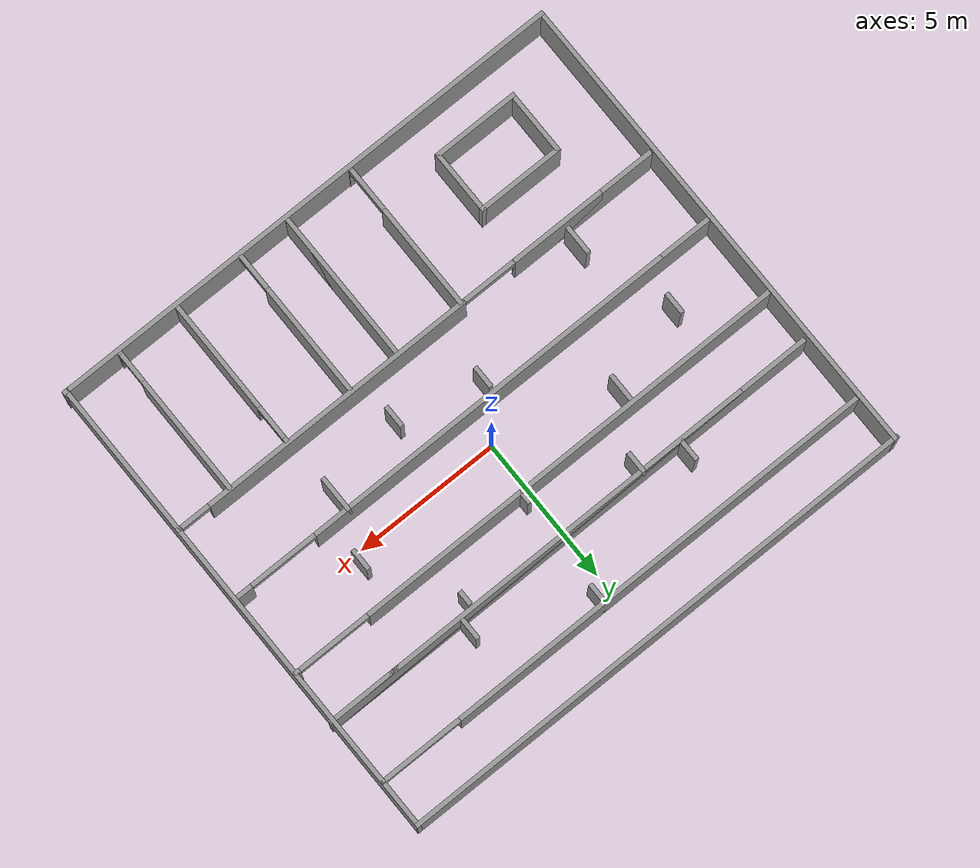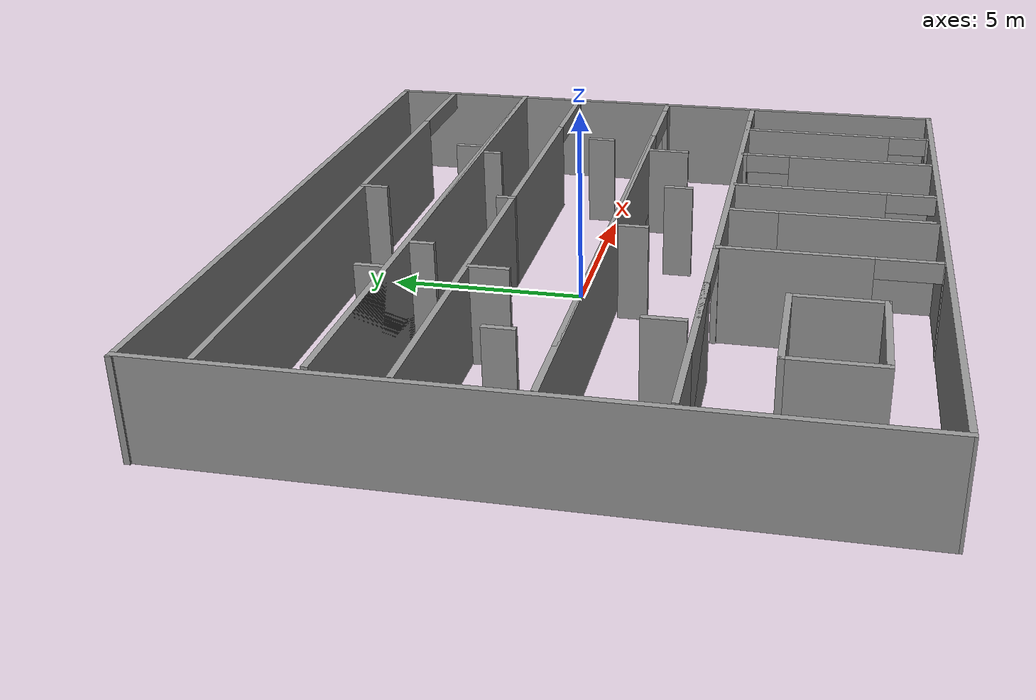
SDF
<?xml version='1.0'?>
<sdf version='1.6'>
  <model name='Trianing5'>
    <pose frame=''>-0.122399 -0.675347 0 0 -0 0</pose>
    <link name='Wall_10'>
      <pose frame=''>0.150649 4.28906 0 0 -0 0</pose>
      <visual name='Wall_10_Visual_0'>
        <pose frame=''>0 0 1.25 0 -0 0</pose>
        <geometry>
          <box>
            <size>18 0.15 2.5</size>
          </box>
        </geometry>
        <material>
          <script>
            <uri>file://media/materials/scripts/gazebo.material</uri>
            <name>Gazebo/Grey</name>
          </script>
          <ambient>1 1 1 1</ambient>
        </material>
        <meta>
          <layer>0</layer>
        </meta>
      </visual>
      <collision name='Wall_10_Collision_0'>
        <geometry>
          <box>
            <size>18 0.15 2.5</size>
          </box>
        </geometry>
        <pose frame=''>0 0 1.25 0 -0 0</pose>
      </collision>
      <visual name='Wall_10_Visual_1'>
        <pose frame=''>1.21086 0 1.25 0 -0 0</pose>
        <geometry>
          <box>
            <size>15.5783 0.15 2.5</size>
          </box>
        </geometry>
        <material>
          <script>
            <uri>file://media/materials/scripts/gazebo.material</uri>
            <name>Gazebo/Grey</name>
          </script>
          <ambient>1 1 1 1</ambient>
        </material>
        <meta>
          <layer>0</layer>
        </meta>
      </visual>
      <collision name='Wall_10_Collision_1'>
        <geometry>
          <box>
            <size>15.5783 0.15 2.5</size>
          </box>
        </geometry>
        <pose frame=''>1.21086 0 1.25 0 -0 0</pose>
      </collision>
    </link>
    <link name='Wall_12'>
      <pose frame=''>0.058126 2.53113 0 0 -0 0</pose>
      <visual name='Wall_12_Visual_0'>
        <pose frame=''>-1.38092 0 1.25 0 -0 0</pose>
        <geometry>
          <box>
            <size>15.2382 0.15 2.5</size>
          </box>
        </geometry>
        <material>
          <script>
            <uri>file://media/materials/scripts/gazebo.material</uri>
            <name>Gazebo/Grey</name>
          </script>
          <ambient>1 1 1 1</ambient>
        </material>
        <meta>
          <layer>0</layer>
        </meta>
      </visual>
      <collision name='Wall_12_Collision_0'>
        <geometry>
          <box>
            <size>15.2382 0.15 2.5</size>
          </box>
        </geometry>
        <pose frame=''>-1.38092 0 1.25 0 -0 0</pose>
      </collision>
      <visual name='Wall_12_Visual_1'>
        <pose frame=''>8.90178 0 1.25 0 -0 0</pose>
        <geometry>
          <box>
            <size>0.196436 0.15 2.5</size>
          </box>
        </geometry>
        <material>
          <script>
            <uri>file://media/materials/scripts/gazebo.material</uri>
            <name>Gazebo/Grey</name>
          </script>
          <ambient>1 1 1 1</ambient>
        </material>
        <meta>
          <layer>0</layer>
        </meta>
      </visual>
      <collision name='Wall_12_Collision_1'>
        <geometry>
          <box>
            <size>0.196436 0.15 2.5</size>
          </box>
        </geometry>
        <pose frame=''>8.90178 0 1.25 0 -0 0</pose>
      </collision>
      <visual name='Wall_12_Visual_2'>
        <pose frame=''>7.52086 0 2.25 0 -0 0</pose>
        <geometry>
          <box>
            <size>2.5654 0.15 0.5</size>
          </box>
        </geometry>
        <material>
          <script>
            <uri>file://media/materials/scripts/gazebo.material</uri>
            <name>Gazebo/Grey</name>
          </script>
          <ambient>1 1 1 1</ambient>
        </material>
        <meta>
          <layer>0</layer>
        </meta>
      </visual>
      <collision name='Wall_12_Collision_2'>
        <geometry>
          <box>
            <size>2.5654 0.15 0.5</size>
          </box>
        </geometry>
        <pose frame=''>7.52086 0 2.25 0 -0 0</pose>
      </collision>
    </link>
    <link name='Wall_14'>
      <pose frame=''>0.058126 -0.290802 0 0 -0 0</pose>
      <visual name='Wall_14_Visual_0'>
        <pose frame=''>-1.5197 0 1.25 0 -0 0</pose>
        <geometry>
          <box>
            <size>14.9606 0.15 2.5</size>
          </box>
        </geometry>
        <material>
          <script>
            <uri>file://media/materials/scripts/gazebo.material</uri>
            <name>Gazebo/Grey</name>
          </script>
          <ambient>1 1 1 1</ambient>
        </material>
        <meta>
          <layer>0</layer>
        </meta>
      </visual>
      <collision name='Wall_14_Collision_0'>
        <geometry>
          <box>
            <size>14.9606 0.15 2.5</size>
          </box>
        </geometry>
        <pose frame=''>-1.5197 0 1.25 0 -0 0</pose>
      </collision>
      <visual name='Wall_14_Visual_1'>
        <pose frame=''>-0.621112 0 1.25 0 -0 0</pose>
        <geometry>
          <box>
            <size>13.1634 0.15 2.5</size>
          </box>
        </geometry>
        <material>
          <script>
            <uri>file://media/materials/scripts/gazebo.material</uri>
            <name>Gazebo/Grey</name>
          </script>
          <ambient>1 1 1 1</ambient>
        </material>
        <meta>
          <layer>0</layer>
        </meta>
      </visual>
      <collision name='Wall_14_Collision_1'>
        <geometry>
          <box>
            <size>13.1634 0.15 2.5</size>
          </box>
        </geometry>
        <pose frame=''>-0.621112 0 1.25 0 -0 0</pose>
      </collision>
      <visual name='Wall_14_Visual_2'>
        <pose frame=''>8.67048 0 1.25 0 -0 0</pose>
        <geometry>
          <box>
            <size>0.659048 0.15 2.5</size>
          </box>
        </geometry>
        <material>
          <script>
            <uri>file://media/materials/scripts/gazebo.material</uri>
            <name>Gazebo/Grey</name>
          </script>
          <ambient>1 1 1 1</ambient>
        </material>
        <meta>
          <layer>0</layer>
        </meta>
      </visual>
      <collision name='Wall_14_Collision_2'>
        <geometry>
          <box>
            <size>0.659048 0.15 2.5</size>
          </box>
        </geometry>
        <pose frame=''>8.67048 0 1.25 0 -0 0</pose>
      </collision>
      <visual name='Wall_14_Visual_3'>
        <pose frame=''>7.15077 0 2.25 0 -0 0</pose>
        <geometry>
          <box>
            <size>2.38036 0.15 0.5</size>
          </box>
        </geometry>
        <material>
          <script>
            <uri>file://media/materials/scripts/gazebo.material</uri>
            <name>Gazebo/Grey</name>
          </script>
          <ambient>1 1 1 1</ambient>
        </material>
        <meta>
          <layer>0</layer>
        </meta>
      </visual>
      <collision name='Wall_14_Collision_3'>
        <geometry>
          <box>
            <size>2.38036 0.15 0.5</size>
          </box>
        </geometry>
        <pose frame=''>7.15077 0 2.25 0 -0 0</pose>
      </collision>
      <visual name='Wall_14_Visual_4'>
        <pose frame=''>7.15077 0 2.25 0 -0 0</pose>
        <geometry>
          <box>
            <size>2.38036 0.15 0.5</size>
          </box>
        </geometry>
        <material>
          <script>
            <uri>file://media/materials/scripts/gazebo.material</uri>
            <name>Gazebo/Grey</name>
          </script>
          <ambient>1 1 1 1</ambient>
        </material>
        <meta>
          <layer>0</layer>
        </meta>
      </visual>
      <collision name='Wall_14_Collision_4'>
        <geometry>
          <box>
            <size>2.38036 0.15 0.5</size>
          </box>
        </geometry>
        <pose frame=''>7.15077 0 2.25 0 -0 0</pose>
      </collision>
    </link>
    <link name='Wall_16'>
      <pose frame=''>0.104387 -2.92769 0 0 -0 0</pose>
      <visual name='Wall_16_Visual_0'>
        <pose frame=''>-6.37713 0 1.25 0 -0 0</pose>
        <geometry>
          <box>
            <size>5.24574 0.15 2.5</size>
          </box>
        </geometry>
        <material>
          <script>
            <uri>file://media/materials/scripts/gazebo.material</uri>
            <name>Gazebo/Grey</name>
          </script>
          <ambient>1 1 1 1</ambient>
        </material>
        <meta>
          <layer>0</layer>
        </meta>
      </visual>
      <collision name='Wall_16_Collision_0'>
        <geometry>
          <box>
            <size>5.24574 0.15 2.5</size>
          </box>
        </geometry>
        <pose frame=''>-6.37713 0 1.25 0 -0 0</pose>
      </collision>
      <visual name='Wall_16_Visual_1'>
        <pose frame=''>-5.42071 0 1.25 0 -0 0</pose>
        <geometry>
          <box>
            <size>3.3329 0.15 2.5</size>
          </box>
        </geometry>
        <material>
          <script>
            <uri>file://media/materials/scripts/gazebo.material</uri>
            <name>Gazebo/Grey</name>
          </script>
          <ambient>1 1 1 1</ambient>
        </material>
        <meta>
          <layer>0</layer>
        </meta>
      </visual>
      <collision name='Wall_16_Collision_1'>
        <geometry>
          <box>
            <size>3.3329 0.15 2.5</size>
          </box>
        </geometry>
        <pose frame=''>-5.42071 0 1.25 0 -0 0</pose>
      </collision>
      <visual name='Wall_16_Visual_2'>
        <pose frame=''>2.95257 0 1.25 0 -0 0</pose>
        <geometry>
          <box>
            <size>9.67069 0.15 2.5</size>
          </box>
        </geometry>
        <material>
          <script>
            <uri>file://media/materials/scripts/gazebo.material</uri>
            <name>Gazebo/Grey</name>
          </script>
          <ambient>1 1 1 1</ambient>
        </material>
        <meta>
          <layer>0</layer>
        </meta>
      </visual>
      <collision name='Wall_16_Collision_2'>
        <geometry>
          <box>
            <size>9.67069 0.15 2.5</size>
          </box>
        </geometry>
        <pose frame=''>2.95257 0 1.25 0 -0 0</pose>
      </collision>
      <visual name='Wall_16_Visual_3'>
        <pose frame=''>8.91335 0 1.25 0 -0 0</pose>
        <geometry>
          <box>
            <size>0.173306 0.15 2.5</size>
          </box>
        </geometry>
        <material>
          <script>
            <uri>file://media/materials/scripts/gazebo.material</uri>
            <name>Gazebo/Grey</name>
          </script>
          <ambient>1 1 1 1</ambient>
        </material>
        <meta>
          <layer>0</layer>
        </meta>
      </visual>
      <collision name='Wall_16_Collision_3'>
        <geometry>
          <box>
            <size>0.173306 0.15 2.5</size>
          </box>
        </geometry>
        <pose frame=''>8.91335 0 1.25 0 -0 0</pose>
      </collision>
      <visual name='Wall_16_Visual_4'>
        <pose frame=''>-2.81852 0 2.25 0 -0 0</pose>
        <geometry>
          <box>
            <size>1.87149 0.15 0.5</size>
          </box>
        </geometry>
        <material>
          <script>
            <uri>file://media/materials/scripts/gazebo.material</uri>
            <name>Gazebo/Grey</name>
          </script>
          <ambient>1 1 1 1</ambient>
        </material>
        <meta>
          <layer>0</layer>
        </meta>
      </visual>
      <collision name='Wall_16_Collision_4'>
        <geometry>
          <box>
            <size>1.87149 0.15 0.5</size>
          </box>
        </geometry>
        <pose frame=''>-2.81852 0 2.25 0 -0 0</pose>
      </collision>
      <visual name='Wall_16_Visual_5'>
        <pose frame=''>-2.81852 0 2.25 0 -0 0</pose>
        <geometry>
          <box>
            <size>1.87149 0.15 0.5</size>
          </box>
        </geometry>
        <material>
          <script>
            <uri>file://media/materials/scripts/gazebo.material</uri>
            <name>Gazebo/Grey</name>
          </script>
          <ambient>1 1 1 1</ambient>
        </material>
        <meta>
          <layer>0</layer>
        </meta>
      </visual>
      <collision name='Wall_16_Collision_5'>
        <geometry>
          <box>
            <size>1.87149 0.15 0.5</size>
          </box>
        </geometry>
        <pose frame=''>-2.81852 0 2.25 0 -0 0</pose>
      </collision>
      <visual name='Wall_16_Visual_6'>
        <pose frame=''>8.3073 0 2.25 0 -0 0</pose>
        <geometry>
          <box>
            <size>1.03878 0.15 0.5</size>
          </box>
        </geometry>
        <material>
          <script>
            <uri>file://media/materials/scripts/gazebo.material</uri>
            <name>Gazebo/Grey</name>
          </script>
          <ambient>1 1 1 1</ambient>
        </material>
        <meta>
          <layer>0</layer>
        </meta>
      </visual>
      <collision name='Wall_16_Collision_6'>
        <geometry>
          <box>
            <size>1.03878 0.15 0.5</size>
          </box>
        </geometry>
        <pose frame=''>8.3073 0 2.25 0 -0 0</pose>
      </collision>
    </link>
    <link name='Wall_21'>
      <pose frame=''>7.09325 -5.52395 0 0 -0 -1.5708</pose>
      <visual name='Wall_21_Visual_0'>
        <pose frame=''>-0.557265 0 1.25 0 -0 0</pose>
        <geometry>
          <box>
            <size>4.13547 0.15 2.5</size>
          </box>
        </geometry>
        <material>
          <script>
            <uri>file://media/materials/scripts/gazebo.material</uri>
            <name>Gazebo/Grey</name>
          </script>
          <ambient>1 1 1 1</ambient>
        </material>
        <meta>
          <layer>0</layer>
        </meta>
      </visual>
      <collision name='Wall_21_Collision_0'>
        <geometry>
          <box>
            <size>4.13547 0.15 2.5</size>
          </box>
        </geometry>
        <pose frame=''>-0.557265 0 1.25 0 -0 0</pose>
      </collision>
      <visual name='Wall_21_Visual_1'>
        <pose frame=''>2.58713 0 1.25 0 -0 0</pose>
        <geometry>
          <box>
            <size>0.075747 0.15 2.5</size>
          </box>
        </geometry>
        <material>
          <script>
            <uri>file://media/materials/scripts/gazebo.material</uri>
            <name>Gazebo/Grey</name>
          </script>
          <ambient>1 1 1 1</ambient>
        </material>
        <meta>
          <layer>0</layer>
        </meta>
      </visual>
      <collision name='Wall_21_Collision_1'>
        <geometry>
          <box>
            <size>0.075747 0.15 2.5</size>
          </box>
        </geometry>
        <pose frame=''>2.58713 0 1.25 0 -0 0</pose>
      </collision>
      <visual name='Wall_21_Visual_2'>
        <pose frame=''>2.02986 0 2.25 0 -0 0</pose>
        <geometry>
          <box>
            <size>1.03878 0.15 0.5</size>
          </box>
        </geometry>
        <material>
          <script>
            <uri>file://media/materials/scripts/gazebo.material</uri>
            <name>Gazebo/Grey</name>
          </script>
          <ambient>1 1 1 1</ambient>
        </material>
        <meta>
          <layer>0</layer>
        </meta>
      </visual>
      <collision name='Wall_21_Collision_2'>
        <geometry>
          <box>
            <size>1.03878 0.15 0.5</size>
          </box>
        </geometry>
        <pose frame=''>2.02986 0 2.25 0 -0 0</pose>
      </collision>
    </link>
    <link name='Wall_24'>
      <pose frame=''>4.91897 -5.57021 0 0 -0 -1.5708</pose>
      <visual name='Wall_24_Visual_0'>
        <pose frame=''>-2.5465 0 1.25 0 -0 0</pose>
        <geometry>
          <box>
            <size>0.157004 0.15 2.5</size>
          </box>
        </geometry>
        <material>
          <script>
            <uri>file://media/materials/scripts/gazebo.material</uri>
            <name>Gazebo/Grey</name>
          </script>
          <ambient>1 1 1 1</ambient>
        </material>
        <meta>
          <layer>0</layer>
        </meta>
      </visual>
      <collision name='Wall_24_Collision_0'>
        <geometry>
          <box>
            <size>0.157004 0.15 2.5</size>
          </box>
        </geometry>
        <pose frame=''>-2.5465 0 1.25 0 -0 0</pose>
      </collision>
      <visual name='Wall_24_Visual_1'>
        <pose frame=''>0.667286 0 1.25 0 -0 0</pose>
        <geometry>
          <box>
            <size>3.91543 0.15 2.5</size>
          </box>
        </geometry>
        <material>
          <script>
            <uri>file://media/materials/scripts/gazebo.material</uri>
            <name>Gazebo/Grey</name>
          </script>
          <ambient>1 1 1 1</ambient>
        </material>
        <meta>
          <layer>0</layer>
        </meta>
      </visual>
      <collision name='Wall_24_Collision_1'>
        <geometry>
          <box>
            <size>3.91543 0.15 2.5</size>
          </box>
        </geometry>
        <pose frame=''>0.667286 0 1.25 0 -0 0</pose>
      </collision>
      <visual name='Wall_24_Visual_2'>
        <pose frame=''>-1.87921 0 2.25 0 -0 0</pose>
        <geometry>
          <box>
            <size>1.17757 0.15 0.5</size>
          </box>
        </geometry>
        <material>
          <script>
            <uri>file://media/materials/scripts/gazebo.material</uri>
            <name>Gazebo/Grey</name>
          </script>
          <ambient>1 1 1 1</ambient>
        </material>
        <meta>
          <layer>0</layer>
        </meta>
      </visual>
      <collision name='Wall_24_Collision_2'>
        <geometry>
          <box>
            <size>1.17757 0.15 0.5</size>
          </box>
        </geometry>
        <pose frame=''>-1.87921 0 2.25 0 -0 0</pose>
      </collision>
    </link>
    <link name='Wall_26'>
      <pose frame=''>2.51338 -5.57021 0 0 -0 -1.5708</pose>
      <visual name='Wall_26_Visual_0'>
        <pose frame=''>-0.649788 0 1.25 0 -0 0</pose>
        <geometry>
          <box>
            <size>3.95042 0.15 2.5</size>
          </box>
        </geometry>
        <material>
          <script>
            <uri>file://media/materials/scripts/gazebo.material</uri>
            <name>Gazebo/Grey</name>
          </script>
          <ambient>1 1 1 1</ambient>
        </material>
        <meta>
          <layer>0</layer>
        </meta>
      </visual>
      <collision name='Wall_26_Collision_0'>
        <geometry>
          <box>
            <size>3.95042 0.15 2.5</size>
          </box>
        </geometry>
        <pose frame=''>-0.649788 0 1.25 0 -0 0</pose>
      </collision>
      <visual name='Wall_26_Visual_1'>
        <pose frame=''>2.61026 0 1.25 0 -0 0</pose>
        <geometry>
          <box>
            <size>0.029487 0.15 2.5</size>
          </box>
        </geometry>
        <material>
          <script>
            <uri>file://media/materials/scripts/gazebo.material</uri>
            <name>Gazebo/Grey</name>
          </script>
          <ambient>1 1 1 1</ambient>
        </material>
        <meta>
          <layer>0</layer>
        </meta>
      </visual>
      <collision name='Wall_26_Collision_1'>
        <geometry>
          <box>
            <size>0.029487 0.15 2.5</size>
          </box>
        </geometry>
        <pose frame=''>2.61026 0 1.25 0 -0 0</pose>
      </collision>
      <visual name='Wall_26_Visual_2'>
        <pose frame=''>1.96047 0 2.25 0 -0 0</pose>
        <geometry>
          <box>
            <size>1.27009 0.15 0.5</size>
          </box>
        </geometry>
        <material>
          <script>
            <uri>file://media/materials/scripts/gazebo.material</uri>
            <name>Gazebo/Grey</name>
          </script>
          <ambient>1 1 1 1</ambient>
        </material>
        <meta>
          <layer>0</layer>
        </meta>
      </visual>
      <collision name='Wall_26_Collision_2'>
        <geometry>
          <box>
            <size>1.27009 0.15 0.5</size>
          </box>
        </geometry>
        <pose frame=''>1.96047 0 2.25 0 -0 0</pose>
      </collision>
    </link>
    <link name='Wall_29'>
      <pose frame=''>0.755459 -5.61648 0 0 -0 -1.5708</pose>
      <visual name='Wall_29_Visual_0'>
        <pose frame=''>0 0 1.25 0 -0 0</pose>
        <geometry>
          <box>
            <size>5.25 0.15 2.5</size>
          </box>
        </geometry>
        <material>
          <script>
            <uri>file://media/materials/scripts/gazebo.material</uri>
            <name>Gazebo/Grey</name>
          </script>
          <ambient>1 1 1 1</ambient>
        </material>
        <meta>
          <layer>0</layer>
        </meta>
      </visual>
      <collision name='Wall_29_Collision_0'>
        <geometry>
          <box>
            <size>5.25 0.15 2.5</size>
          </box>
        </geometry>
        <pose frame=''>0 0 1.25 0 -0 0</pose>
      </collision>
      <visual name='Wall_29_Visual_1'>
        <pose frame=''>0.621024 0 1.25 0 -0 0</pose>
        <geometry>
          <box>
            <size>4.00795 0.15 2.5</size>
          </box>
        </geometry>
        <material>
          <script>
            <uri>file://media/materials/scripts/gazebo.material</uri>
            <name>Gazebo/Grey</name>
          </script>
          <ambient>1 1 1 1</ambient>
        </material>
        <meta>
          <layer>0</layer>
        </meta>
      </visual>
      <collision name='Wall_29_Collision_1'>
        <geometry>
          <box>
            <size>4.00795 0.15 2.5</size>
          </box>
        </geometry>
        <pose frame=''>0.621024 0 1.25 0 -0 0</pose>
      </collision>
    </link>
    <link name='Wall_3'>
      <collision name='Wall_3_Collision'>
        <geometry>
          <box>
            <size>18.25 0.15 2.5</size>
          </box>
        </geometry>
        <pose frame=''>0 0 1.25 0 -0 0</pose>
      </collision>
      <visual name='Wall_3_Visual'>
        <pose frame=''>0 0 1.25 0 -0 0</pose>
        <geometry>
          <box>
            <size>18.25 0.15 2.5</size>
          </box>
        </geometry>
        <material>
          <script>
            <uri>file://media/materials/scripts/gazebo.material</uri>
            <name>Gazebo/Grey</name>
          </script>
          <ambient>1 1 1 1</ambient>
        </material>
        <meta>
          <layer>0</layer>
        </meta>
      </visual>
      <pose frame=''>-0.032477 8.22126 0 0 -0 3.14159</pose>
    </link>
    <link name='Wall_31'>
      <pose frame=''>-1.65012 -5.52395 0 0 -0 -1.5708</pose>
      <visual name='Wall_31_Visual_0'>
        <pose frame=''>-0.788572 0 1.25 0 -0 0</pose>
        <geometry>
          <box>
            <size>3.67286 0.15 2.5</size>
          </box>
        </geometry>
        <material>
          <script>
            <uri>file://media/materials/scripts/gazebo.material</uri>
            <name>Gazebo/Grey</name>
          </script>
          <ambient>1 1 1 1</ambient>
        </material>
        <meta>
          <layer>0</layer>
        </meta>
      </visual>
      <collision name='Wall_31_Collision_0'>
        <geometry>
          <box>
            <size>3.67286 0.15 2.5</size>
          </box>
        </geometry>
        <pose frame=''>-0.788572 0 1.25 0 -0 0</pose>
      </collision>
      <visual name='Wall_31_Visual_1'>
        <pose frame=''>2.61026 0 1.25 0 -0 0</pose>
        <geometry>
          <box>
            <size>0.029486 0.15 2.5</size>
          </box>
        </geometry>
        <material>
          <script>
            <uri>file://media/materials/scripts/gazebo.material</uri>
            <name>Gazebo/Grey</name>
          </script>
          <ambient>1 1 1 1</ambient>
        </material>
        <meta>
          <layer>0</layer>
        </meta>
      </visual>
      <collision name='Wall_31_Collision_1'>
        <geometry>
          <box>
            <size>0.029486 0.15 2.5</size>
          </box>
        </geometry>
        <pose frame=''>2.61026 0 1.25 0 -0 0</pose>
      </collision>
      <visual name='Wall_31_Visual_2'>
        <pose frame=''>1.82168 0 2.25 0 -0 0</pose>
        <geometry>
          <box>
            <size>1.54766 0.15 0.5</size>
          </box>
        </geometry>
        <material>
          <script>
            <uri>file://media/materials/scripts/gazebo.material</uri>
            <name>Gazebo/Grey</name>
          </script>
          <ambient>1 1 1 1</ambient>
        </material>
        <meta>
          <layer>0</layer>
        </meta>
      </visual>
      <collision name='Wall_31_Collision_2'>
        <geometry>
          <box>
            <size>1.54766 0.15 0.5</size>
          </box>
        </geometry>
        <pose frame=''>1.82168 0 2.25 0 -0 0</pose>
      </collision>
    </link>
    <link name='Wall_38'>
      <collision name='Wall_38_Collision'>
        <geometry>
          <box>
            <size>1.25 0.15 2.5</size>
          </box>
        </geometry>
        <pose frame=''>0 0 1.25 0 -0 0</pose>
      </collision>
      <visual name='Wall_38_Visual'>
        <pose frame=''>0 0 1.25 0 -0 0</pose>
        <geometry>
          <box>
            <size>1.25 0.15 2.5</size>
          </box>
        </geometry>
        <material>
          <script>
            <uri>file://media/materials/scripts/gazebo.material</uri>
            <name>Gazebo/Grey</name>
          </script>
          <ambient>1 1 1 1</ambient>
        </material>
        <meta>
          <layer>0</layer>
        </meta>
      </visual>
      <pose frame=''>4.78019 -0.840802 0 0 -0 -1.5708</pose>
    </link>
    <link name='Wall_4'>
      <collision name='Wall_4_Collision'>
        <geometry>
          <box>
            <size>16.5925 0.15 2.5</size>
          </box>
        </geometry>
        <pose frame=''>0 0 1.25 0 -0 0</pose>
      </collision>
      <visual name='Wall_4_Visual'>
        <pose frame=''>0 0 1.25 0 -0 0</pose>
        <geometry>
          <box>
            <size>16.5925 0.15 2.5</size>
          </box>
        </geometry>
        <material>
          <script>
            <uri>file://media/materials/scripts/gazebo.material</uri>
            <name>Gazebo/Grey</name>
          </script>
          <ambient>1 1 1 1</ambient>
        </material>
        <meta>
          <layer>0</layer>
        </meta>
      </visual>
      <pose frame=''>-9.02687 -0 0 0 -0 -1.56966</pose>
    </link>
    <link name='Wall_40'>
      <collision name='Wall_40_Collision'>
        <geometry>
          <box>
            <size>0.75 0.15 2.5</size>
          </box>
        </geometry>
        <pose frame=''>0 0 1.25 0 -0 0</pose>
      </collision>
      <visual name='Wall_40_Visual'>
        <pose frame=''>0 0 1.25 0 -0 0</pose>
        <geometry>
          <box>
            <size>0.75 0.15 2.5</size>
          </box>
        </geometry>
        <material>
          <script>
            <uri>file://media/materials/scripts/gazebo.material</uri>
            <name>Gazebo/Grey</name>
          </script>
          <ambient>1 1 1 1</ambient>
        </material>
        <meta>
          <layer>0</layer>
        </meta>
      </visual>
      <pose frame=''>2.00451 -1.56229 0 0 -0 -1.5708</pose>
    </link>
    <link name='Wall_42'>
      <collision name='Wall_42_Collision'>
        <geometry>
          <box>
            <size>0.75 0.15 2.5</size>
          </box>
        </geometry>
        <pose frame=''>0 0 1.25 0 -0 0</pose>
      </collision>
      <visual name='Wall_42_Visual'>
        <pose frame=''>0 0 1.25 0 -0 0</pose>
        <geometry>
          <box>
            <size>0.75 0.15 2.5</size>
          </box>
        </geometry>
        <material>
          <script>
            <uri>file://media/materials/scripts/gazebo.material</uri>
            <name>Gazebo/Grey</name>
          </script>
          <ambient>1 1 1 1</ambient>
        </material>
        <meta>
          <layer>0</layer>
        </meta>
      </visual>
      <pose frame=''>-0.771161 -0.822109 0 0 -0 -1.5708</pose>
    </link>
    <link name='Wall_44'>
      <collision name='Wall_44_Collision'>
        <geometry>
          <box>
            <size>1 0.15 2.5</size>
          </box>
        </geometry>
        <pose frame=''>0 0 1.25 0 -0 0</pose>
      </collision>
      <visual name='Wall_44_Visual'>
        <pose frame=''>0 0 1.25 0 -0 0</pose>
        <geometry>
          <box>
            <size>1 0.15 2.5</size>
          </box>
        </geometry>
        <material>
          <script>
            <uri>file://media/materials/scripts/gazebo.material</uri>
            <name>Gazebo/Grey</name>
          </script>
          <ambient>1 1 1 1</ambient>
        </material>
        <meta>
          <layer>0</layer>
        </meta>
      </visual>
      <pose frame=''>-5.53607 -2.24242 0 0 -0 -1.5708</pose>
    </link>
    <link name='Wall_46'>
      <collision name='Wall_46_Collision'>
        <geometry>
          <box>
            <size>0.5 0.15 2.5</size>
          </box>
        </geometry>
        <pose frame=''>0 0 1.25 0 -0 0</pose>
      </collision>
      <visual name='Wall_46_Visual'>
        <pose frame=''>0 0 1.25 0 -0 0</pose>
        <geometry>
          <box>
            <size>0.5 0.15 2.5</size>
          </box>
        </geometry>
        <material>
          <script>
            <uri>file://media/materials/scripts/gazebo.material</uri>
            <name>Gazebo/Grey</name>
          </script>
          <ambient>1 1 1 1</ambient>
        </material>
        <meta>
          <layer>0</layer>
        </meta>
      </visual>
      <pose frame=''>3.76244 3.92901 0 0 -0 -1.5708</pose>
    </link>
    <link name='Wall_48'>
      <collision name='Wall_48_Collision'>
        <geometry>
          <box>
            <size>0.5 0.15 2.5</size>
          </box>
        </geometry>
        <pose frame=''>0 0 1.25 0 -0 0</pose>
      </collision>
      <visual name='Wall_48_Visual'>
        <pose frame=''>0 0 1.25 0 -0 0</pose>
        <geometry>
          <box>
            <size>0.5 0.15 2.5</size>
          </box>
        </geometry>
        <material>
          <script>
            <uri>file://media/materials/scripts/gazebo.material</uri>
            <name>Gazebo/Grey</name>
          </script>
          <ambient>1 1 1 1</ambient>
        </material>
        <meta>
          <layer>0</layer>
        </meta>
      </visual>
      <pose frame=''>0.524153 2.70613 0 0 -0 1.5708</pose>
    </link>
    <link name='Wall_5'>
      <collision name='Wall_5_Collision'>
        <geometry>
          <box>
            <size>18.25 0.15 2.5</size>
          </box>
        </geometry>
        <pose frame=''>0 0 1.25 0 -0 0</pose>
      </collision>
      <visual name='Wall_5_Visual'>
        <pose frame=''>0 0 1.25 0 -0 0</pose>
        <geometry>
          <box>
            <size>18.25 0.15 2.5</size>
          </box>
        </geometry>
        <material>
          <script>
            <uri>file://media/materials/scripts/gazebo.material</uri>
            <name>Gazebo/Grey</name>
          </script>
          <ambient>1 1 1 1</ambient>
        </material>
        <meta>
          <layer>0</layer>
        </meta>
      </visual>
      <pose frame=''>0.032478 -8.22126 0 0 -0 0</pose>
    </link>
    <link name='Wall_50'>
      <collision name='Wall_50_Collision'>
        <geometry>
          <box>
            <size>0.75 0.15 2.5</size>
          </box>
        </geometry>
        <pose frame=''>0 0 1.25 0 -0 0</pose>
      </collision>
      <visual name='Wall_50_Visual'>
        <pose frame=''>0 0 1.25 0 -0 0</pose>
        <geometry>
          <box>
            <size>0.75 0.15 2.5</size>
          </box>
        </geometry>
        <material>
          <script>
            <uri>file://media/materials/scripts/gazebo.material</uri>
            <name>Gazebo/Grey</name>
          </script>
          <ambient>1 1 1 1</ambient>
        </material>
        <meta>
          <layer>0</layer>
        </meta>
      </visual>
      <pose frame=''>-2.66787 3.98906 0 0 -0 -1.5708</pose>
    </link>
    <link name='Wall_52'>
      <collision name='Wall_52_Collision'>
        <geometry>
          <box>
            <size>0.75 0.15 2.5</size>
          </box>
        </geometry>
        <pose frame=''>0 0 1.25 0 -0 0</pose>
      </collision>
      <visual name='Wall_52_Visual'>
        <pose frame=''>0 0 1.25 0 -0 0</pose>
        <geometry>
          <box>
            <size>0.75 0.15 2.5</size>
          </box>
        </geometry>
        <material>
          <script>
            <uri>file://media/materials/scripts/gazebo.material</uri>
            <name>Gazebo/Grey</name>
          </script>
          <ambient>1 1 1 1</ambient>
        </material>
        <meta>
          <layer>0</layer>
        </meta>
      </visual>
      <pose frame=''>-4.10197 4.68158 0 0 -0 1.5708</pose>
    </link>
    <link name='Wall_54'>
      <collision name='Wall_54_Collision'>
        <geometry>
          <box>
            <size>0.75 0.15 2.5</size>
          </box>
        </geometry>
        <pose frame=''>0 0 1.25 0 -0 0</pose>
      </collision>
      <visual name='Wall_54_Visual'>
        <pose frame=''>0 0 1.25 0 -0 0</pose>
        <geometry>
          <box>
            <size>0.75 0.15 2.5</size>
          </box>
        </geometry>
        <material>
          <script>
            <uri>file://media/materials/scripts/gazebo.material</uri>
            <name>Gazebo/Grey</name>
          </script>
          <ambient>1 1 1 1</ambient>
        </material>
        <meta>
          <layer>0</layer>
        </meta>
      </visual>
      <pose frame=''>0.662937 6.30212 0 0 -0 -1.5708</pose>
    </link>
    <link name='Wall_56'>
      <collision name='Wall_56_Collision'>
        <geometry>
          <box>
            <size>0.75 0.15 2.5</size>
          </box>
        </geometry>
        <pose frame=''>0 0 1.25 0 -0 0</pose>
      </collision>
      <visual name='Wall_56_Visual'>
        <pose frame=''>0 0 1.25 0 -0 0</pose>
        <geometry>
          <box>
            <size>0.75 0.15 2.5</size>
          </box>
        </geometry>
        <material>
          <script>
            <uri>file://media/materials/scripts/gazebo.material</uri>
            <name>Gazebo/Grey</name>
          </script>
          <ambient>1 1 1 1</ambient>
        </material>
        <meta>
          <layer>0</layer>
        </meta>
      </visual>
      <pose frame=''>4.22505 4.72784 0 0 -0 1.5708</pose>
    </link>
    <link name='Wall_58'>
      <collision name='Wall_58_Collision'>
        <geometry>
          <box>
            <size>2.25 0.15 2.5</size>
          </box>
        </geometry>
        <pose frame=''>0 0 1.25 0 -0 0</pose>
      </collision>
      <visual name='Wall_58_Visual'>
        <pose frame=''>0 0 1.25 0 -0 0</pose>
        <geometry>
          <box>
            <size>2.25 0.15 2.5</size>
          </box>
        </geometry>
        <material>
          <script>
            <uri>file://media/materials/scripts/gazebo.material</uri>
            <name>Gazebo/Grey</name>
          </script>
          <ambient>1 1 1 1</ambient>
        </material>
        <meta>
          <layer>0</layer>
        </meta>
      </visual>
      <pose frame=''>-6.78512 -5.78188 0 0 -0 -1.5708</pose>
    </link>
    <link name='Wall_59'>
      <collision name='Wall_59_Collision'>
        <geometry>
          <box>
            <size>3 0.15 2.5</size>
          </box>
        </geometry>
        <pose frame=''>0 0 1.25 0 -0 0</pose>
      </collision>
      <visual name='Wall_59_Visual'>
        <pose frame=''>0 0 1.25 0 -0 0</pose>
        <geometry>
          <box>
            <size>3 0.15 2.5</size>
          </box>
        </geometry>
        <material>
          <script>
            <uri>file://media/materials/scripts/gazebo.material</uri>
            <name>Gazebo/Grey</name>
          </script>
          <ambient>1 1 1 1</ambient>
        </material>
        <meta>
          <layer>0</layer>
        </meta>
      </visual>
      <pose frame=''>-5.36012 -6.83188 0 0 -0 0</pose>
    </link>
    <link name='Wall_6'>
      <collision name='Wall_6_Collision'>
        <geometry>
          <box>
            <size>16.5929 0.15 2.5</size>
          </box>
        </geometry>
        <pose frame=''>0 0 1.25 0 -0 0</pose>
      </collision>
      <visual name='Wall_6_Visual'>
        <pose frame=''>0 0 1.25 0 -0 0</pose>
        <geometry>
          <box>
            <size>16.5929 0.15 2.5</size>
          </box>
        </geometry>
        <material>
          <script>
            <uri>file://media/materials/scripts/gazebo.material</uri>
            <name>Gazebo/Grey</name>
          </script>
          <ambient>1 1 1 1</ambient>
        </material>
        <meta>
          <layer>0</layer>
        </meta>
      </visual>
      <pose frame=''>9.02687 -0 0 0 -0 1.57193</pose>
    </link>
    <link name='Wall_60'>
      <collision name='Wall_60_Collision'>
        <geometry>
          <box>
            <size>2.25 0.15 2.5</size>
          </box>
        </geometry>
        <pose frame=''>0 0 1.25 0 -0 0</pose>
      </collision>
      <visual name='Wall_60_Visual'>
        <pose frame=''>0 0 1.25 0 -0 0</pose>
        <geometry>
          <box>
            <size>2.25 0.15 2.5</size>
          </box>
        </geometry>
        <material>
          <script>
            <uri>file://media/materials/scripts/gazebo.material</uri>
            <name>Gazebo/Grey</name>
          </script>
          <ambient>1 1 1 1</ambient>
        </material>
        <meta>
          <layer>0</layer>
        </meta>
      </visual>
      <pose frame=''>-3.93512 -5.78188 0 0 -0 1.5708</pose>
    </link>
    <link name='Wall_61'>
      <collision name='Wall_61_Collision'>
        <geometry>
          <box>
            <size>3 0.15 2.5</size>
          </box>
        </geometry>
        <pose frame=''>0 0 1.25 0 -0 0</pose>
      </collision>
      <visual name='Wall_61_Visual'>
        <pose frame=''>0 0 1.25 0 -0 0</pose>
        <geometry>
          <box>
            <size>3 0.15 2.5</size>
          </box>
        </geometry>
        <material>
          <script>
            <uri>file://media/materials/scripts/gazebo.material</uri>
            <name>Gazebo/Grey</name>
          </script>
          <ambient>1 1 1 1</ambient>
        </material>
        <meta>
          <layer>0</layer>
        </meta>
      </visual>
      <pose frame=''>-5.36012 -4.73188 0 0 -0 3.14159</pose>
    </link>
    <link name='Wall_63'>
      <collision name='Wall_63_Collision'>
        <geometry>
          <box>
            <size>0.75 0.15 2.5</size>
          </box>
        </geometry>
        <pose frame=''>0 0 1.25 0 -0 0</pose>
      </collision>
      <visual name='Wall_63_Visual'>
        <pose frame=''>0 0 1.25 0 -0 0</pose>
        <geometry>
          <box>
            <size>0.75 0.15 2.5</size>
          </box>
        </geometry>
        <material>
          <script>
            <uri>file://media/materials/scripts/gazebo.material</uri>
            <name>Gazebo/Grey</name>
          </script>
          <ambient>1 1 1 1</ambient>
        </material>
        <meta>
          <layer>0</layer>
        </meta>
      </visual>
      <pose frame=''>5.42784 1.12086 0 0 -0 -1.5708</pose>
    </link>
    <link name='Wall_65'>
      <collision name='Wall_65_Collision'>
        <geometry>
          <box>
            <size>1 0.15 2.5</size>
          </box>
        </geometry>
        <pose frame=''>0 0 1.25 0 -0 0</pose>
      </collision>
      <visual name='Wall_65_Visual'>
        <pose frame=''>0 0 1.25 0 -0 0</pose>
        <geometry>
          <box>
            <size>1 0.15 2.5</size>
          </box>
        </geometry>
        <material>
          <script>
            <uri>file://media/materials/scripts/gazebo.material</uri>
            <name>Gazebo/Grey</name>
          </script>
          <ambient>1 1 1 1</ambient>
        </material>
        <meta>
          <layer>0</layer>
        </meta>
      </visual>
      <pose frame=''>-3.73188 2.01361 0 0 -0 -1.5708</pose>
    </link>
    <link name='Wall_67'>
      <collision name='Wall_67_Collision'>
        <geometry>
          <box>
            <size>0.75 0.15 2.5</size>
          </box>
        </geometry>
        <pose frame=''>0 0 1.25 0 -0 0</pose>
      </collision>
      <visual name='Wall_67_Visual'>
        <pose frame=''>0 0 1.25 0 -0 0</pose>
        <geometry>
          <box>
            <size>0.75 0.15 2.5</size>
          </box>
        </geometry>
        <material>
          <script>
            <uri>file://media/materials/scripts/gazebo.material</uri>
            <name>Gazebo/Grey</name>
          </script>
          <ambient>1 1 1 1</ambient>
        </material>
        <meta>
          <layer>0</layer>
        </meta>
      </visual>
      <pose frame=''>-6.55381 1.02694 0 0 -0 1.5708</pose>
    </link>
    <link name='Wall_8'>
      <pose frame=''>0.058126 6.60212 0 0 -0 0</pose>
      <visual name='Wall_8_Visual_0'>
        <pose frame=''>-1.46188 0 1.25 0 -0 0</pose>
        <geometry>
          <box>
            <size>15.0762 0.15 2.5</size>
          </box>
        </geometry>
        <material>
          <script>
            <uri>file://media/materials/scripts/gazebo.material</uri>
            <name>Gazebo/Grey</name>
          </script>
          <ambient>1 1 1 1</ambient>
        </material>
        <meta>
          <layer>0</layer>
        </meta>
      </visual>
      <collision name='Wall_8_Collision_0'>
        <geometry>
          <box>
            <size>15.0762 0.15 2.5</size>
          </box>
        </geometry>
        <pose frame=''>-1.46188 0 1.25 0 -0 0</pose>
      </collision>
      <visual name='Wall_8_Visual_1'>
        <pose frame=''>8.95961 0 1.25 0 -0 0</pose>
        <geometry>
          <box>
            <size>0.080783 0.15 2.5</size>
          </box>
        </geometry>
        <material>
          <script>
            <uri>file://media/materials/scripts/gazebo.material</uri>
            <name>Gazebo/Grey</name>
          </script>
          <ambient>1 1 1 1</ambient>
        </material>
        <meta>
          <layer>0</layer>
        </meta>
      </visual>
      <collision name='Wall_8_Collision_1'>
        <geometry>
          <box>
            <size>0.080783 0.15 2.5</size>
          </box>
        </geometry>
        <pose frame=''>8.95961 0 1.25 0 -0 0</pose>
      </collision>
      <visual name='Wall_8_Visual_2'>
        <pose frame=''>7.49773 0 2.25 0 -0 0</pose>
        <geometry>
          <box>
            <size>2.84297 0.15 0.5</size>
          </box>
        </geometry>
        <material>
          <script>
            <uri>file://media/materials/scripts/gazebo.material</uri>
            <name>Gazebo/Grey</name>
          </script>
          <ambient>1 1 1 1</ambient>
        </material>
        <meta>
          <layer>0</layer>
        </meta>
      </visual>
      <collision name='Wall_8_Collision_2'>
        <geometry>
          <box>
            <size>2.84297 0.15 0.5</size>
          </box>
        </geometry>
        <pose frame=''>7.49773 0 2.25 0 -0 0</pose>
      </collision>
    </link>
    <static>1</static>
  </model>
</sdf>
